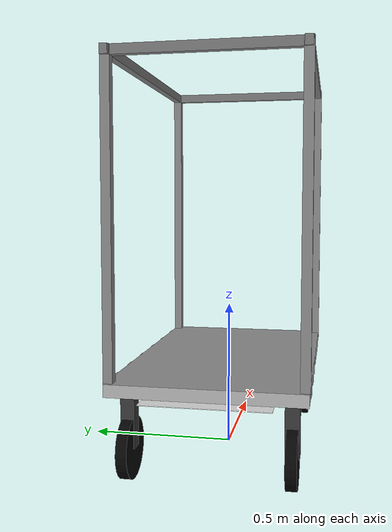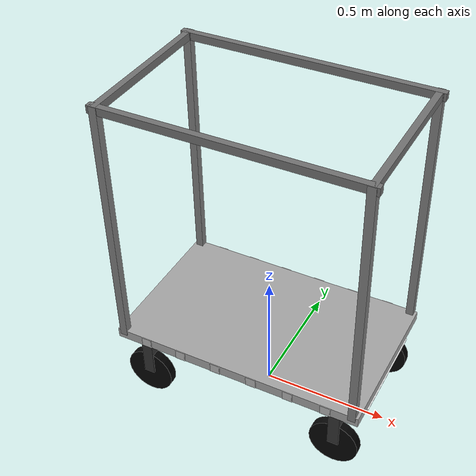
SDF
<?xml version="1.0" ?>
<sdf version="1.6">
  <model name="Trolley">
    <static>false</static>

    <link name="link">

      <visual name="platform">
        <pose>0 0 0.300 0 0 0</pose>
        <geometry>
          <box>
            <size>1.005 0.610 0.040</size>
          </box>
        </geometry>
        <material>
          <ambient>0.65 0.65 0.65 1</ambient>
          <diffuse>0.65 0.65 0.65 1</diffuse>
          <specular>0.1 0.1 0.1 1</specular>
        </material>
      </visual>

      <visual name="platform_front">
        <pose>0.4 0 0.262 0 0 0</pose>
        <geometry>
          <box>
            <size>0.205 0.402 0.002</size>
          </box>
        </geometry>
        <material>
          <ambient>1 1 1 1</ambient>
          <diffuse>1 1 1 1</diffuse>
          <specular>0.1 0.1 0.1 1</specular>
        </material>
      </visual>

      <visual name="platform_rear">
        <pose>-0.4 0 0.262 0 0 0</pose>
        <geometry>
          <box>
            <size>0.205 0.402 0.002</size>
          </box>
        </geometry>
        <material>
          <ambient>1 1 1 1</ambient>
          <diffuse>1 1 1 1</diffuse>
          <specular>0.1 0.1 0.1 1</specular>
        </material>
      </visual>

      <collision name="platform_collision">
        <pose>0 0 0.300 0 0 0</pose>
        <geometry>
          <box>
            <size>1.005 0.610 0.040</size>
          </box>
        </geometry>
        <surface>
          <friction>
            <ode>
              <mu>1.0</mu>
              <mu2>1.0</mu2>
            </ode>
          </friction>
        </surface>
      </collision>

      <collision name="platform_front_collision">
        <pose>0.605 0 0.262 0 0 0</pose>
        <geometry>
          <box>
            <size>0.205 0.402 0.040</size>
          </box>
        </geometry>
        <surface>
          <friction>
            <ode>
              <mu>1.0</mu>
              <mu2>1.0</mu2>
            </ode>
          </friction>
        </surface>
      </collision>

      <collision name="platform_rear_collision">
        <pose>-0.605 0 0.262 0 0 0</pose>
        <geometry>
          <box>
            <size>0.205 0.402 0.040</size>
          </box>
        </geometry>
        <surface>
          <friction>
            <ode>
              <mu>1.0</mu>
              <mu2>1.0</mu2>
            </ode>
          </friction>
        </surface>
      </collision>

      <visual name="top_rail_front">
        <pose>0.4775 0 1.300 0 0 0</pose>
        <geometry>
          <box>
            <size>0.025 0.610 0.030</size>
          </box>
        </geometry>
        <material>
          <ambient>0.45 0.45 0.45 1</ambient>
          <diffuse>0.45 0.45 0.45 1</diffuse>
        </material>
      </visual>

      <visual name="top_rail_rear">
        <pose>-0.4775 0 1.300 0 0 0</pose>
        <geometry>
          <box>
            <size>0.025 0.610 0.030</size>
          </box>
        </geometry>
        <material>
          <ambient>0.45 0.45 0.45 1</ambient>
          <diffuse>0.45 0.45 0.45 1</diffuse>
        </material>
      </visual>

      <visual name="top_rail_left">
        <pose>0 0.2925 1.300 0 0 0</pose>
        <geometry>
          <box>
            <size>1.005 0.025 0.030</size>
          </box>
        </geometry>
        <material>
          <ambient>0.45 0.45 0.45 1</ambient>
          <diffuse>0.45 0.45 0.45 1</diffuse>
        </material>
      </visual>

      <visual name="top_rail_right">
        <pose>0 -0.2925 1.300 0 0 0</pose>
        <geometry>
          <box>
            <size>1.005 0.025 0.030</size>
          </box>
        </geometry>
        <material>
          <ambient>0.45 0.45 0.45 1</ambient>
          <diffuse>0.45 0.45 0.45 1</diffuse>
        </material>
      </visual>

      <visual name="post_front_left">
        <pose>0.4775 0.2925 0.8075 0 0 0</pose>
        <geometry>
          <box>
            <size>0.030 0.030 1.015</size>
          </box>
        </geometry>
        <material>
          <ambient>0.50 0.50 0.50 1</ambient>
          <diffuse>0.50 0.50 0.50 1</diffuse>
        </material>
      </visual>

      <visual name="post_front_right">
        <pose>0.4775 -0.2925 0.8075 0 0 0</pose>
        <geometry>
          <box>
            <size>0.030 0.030 1.015</size>
          </box>
        </geometry>
        <material>
          <ambient>0.50 0.50 0.50 1</ambient>
          <diffuse>0.50 0.50 0.50 1</diffuse>
        </material>
      </visual>

      <visual name="post_rear_left">
        <pose>-0.4775 0.2925 0.8075 0 0 0</pose>
        <geometry>
          <box>
            <size>0.030 0.030 1.015</size>
          </box>
        </geometry>
        <material>
          <ambient>0.50 0.50 0.50 1</ambient>
          <diffuse>0.50 0.50 0.50 1</diffuse>
        </material>
      </visual>

      <visual name="post_rear_right">
        <pose>-0.4775 -0.2925 0.8075 0 0 0</pose>
        <geometry>
          <box>
            <size>0.030 0.030 1.015</size>
          </box>
        </geometry>
        <material>
          <ambient>0.50 0.50 0.50 1</ambient>
          <diffuse>0.50 0.50 0.50 1</diffuse>
        </material>
      </visual>

      <visual name="pin_socket_front">
        <pose>0.090175 0 0.285 0 0 0</pose>
        <geometry>
          <cylinder>
            <radius>0.018</radius>
            <length>0.020</length>
          </cylinder>
        </geometry>
        <material>
          <ambient>0.1 0.1 0.1 1</ambient>
          <diffuse>0.1 0.1 0.1 1</diffuse>
        </material>
      </visual>

      <collision name="pin_socket_front_collision">
        <pose>0.090175 0 0.285 0 0 0</pose>
        <geometry>
          <cylinder>
            <radius>0.018</radius>
            <length>0.020</length>
          </cylinder>
        </geometry>
      </collision>

      <visual name="pin_socket_rear">
        <pose>-0.090175 0 0.285 0 0 0</pose>
        <geometry>
          <cylinder>
            <radius>0.018</radius>
            <length>0.020</length>
          </cylinder>
        </geometry>
        <material>
          <ambient>0.1 0.1 0.1 1</ambient>
          <diffuse>0.1 0.1 0.1 1</diffuse>
        </material>
      </visual>

      <collision name="pin_socket_rear_collision">
        <pose>-0.090175 0 0.285 0 0 0</pose>
        <geometry>
          <cylinder>
            <radius>0.018</radius>
            <length>0.020</length>
          </cylinder>
        </geometry>
      </collision>

      <visual name="aruco_backing_0">
        <pose>0.3525 0.1425 0.2605 0 0 0</pose>
        <geometry>
          <box>
            <size>0.090 0.090 0.001</size>
          </box>
        </geometry>
        <material>
          <ambient>1 1 1 1</ambient>
          <diffuse>1 1 1 1</diffuse>
          <specular>0 0 0 1</specular>
        </material>
      </visual>

      <visual name="aruco_0">
        <pose>0.3525 0.1425 0.2595 0 0 0</pose>
        <geometry>
          <box>
            <size>0.080 0.080 0.001</size>
          </box>
        </geometry>
        <material>
          <script>
            <uri>model://Trolley/materials/scripts</uri>
            <uri>model://Trolley/materials/textures</uri>
            <name>Trolley/Aruco0</name>
          </script>
        </material>
      </visual>

      <visual name="aruco_backing_1">
        <pose>0.4475 0.1425 0.2605 0 0 0</pose>
        <geometry>
          <box>
            <size>0.090 0.090 0.001</size>
          </box>
        </geometry>
        <material>
          <ambient>1 1 1 1</ambient>
          <diffuse>1 1 1 1</diffuse>
          <specular>0 0 0 1</specular>
        </material>
      </visual>

      <visual name="aruco_1">
        <pose>0.4475 0.1425 0.2595 0 0 0</pose>
        <geometry>
          <box>
            <size>0.080 0.080 0.001</size>
          </box>
        </geometry>
        <material>
          <script>
            <uri>model://Trolley/materials/scripts</uri>
            <uri>model://Trolley/materials/textures</uri>
            <name>Trolley/Aruco1</name>
          </script>
        </material>
      </visual>

      <visual name="aruco_backing_2">
        <pose>0.3525 0.0475 0.2605 0 0 0</pose>
        <geometry>
          <box>
            <size>0.090 0.090 0.001</size>
          </box>
        </geometry>
        <material>
          <ambient>1 1 1 1</ambient>
          <diffuse>1 1 1 1</diffuse>
          <specular>0 0 0 1</specular>
        </material>
      </visual>

      <visual name="aruco_2">
        <pose>0.3525 0.0475 0.2595 0 0 0</pose>
        <geometry>
          <box>
            <size>0.080 0.080 0.001</size>
          </box>
        </geometry>
        <material>
          <script>
            <uri>model://Trolley/materials/scripts</uri>
            <uri>model://Trolley/materials/textures</uri>
            <name>Trolley/Aruco2</name>
          </script>
        </material>
      </visual>

      <visual name="aruco_backing_3">
        <pose>0.4475 0.0475 0.2605 0 0 0</pose>
        <geometry>
          <box>
            <size>0.090 0.090 0.001</size>
          </box>
        </geometry>
        <material>
          <ambient>1 1 1 1</ambient>
          <diffuse>1 1 1 1</diffuse>
          <specular>0 0 0 1</specular>
        </material>
      </visual>

      <visual name="aruco_3">
        <pose>0.4475 0.0475 0.2595 0 0 0</pose>
        <geometry>
          <box>
            <size>0.080 0.080 0.001</size>
          </box>
        </geometry>
        <material>
          <script>
            <uri>model://Trolley/materials/scripts</uri>
            <uri>model://Trolley/materials/textures</uri>
            <name>Trolley/Aruco3</name>
          </script>
        </material>
      </visual>

      <visual name="aruco_backing_4">
        <pose>0.3525 -0.0475 0.2605 0 0 0</pose>
        <geometry>
          <box>
            <size>0.090 0.090 0.001</size>
          </box>
        </geometry>
        <material>
          <ambient>1 1 1 1</ambient>
          <diffuse>1 1 1 1</diffuse>
          <specular>0 0 0 1</specular>
        </material>
      </visual>

      <visual name="aruco_4">
        <pose>0.3525 -0.0475 0.2595 0 0 0</pose>
        <geometry>
          <box>
            <size>0.080 0.080 0.001</size>
          </box>
        </geometry>
        <material>
          <script>
            <uri>model://Trolley/materials/scripts</uri>
            <uri>model://Trolley/materials/textures</uri>
            <name>Trolley/Aruco4</name>
          </script>
        </material>
      </visual>

      <visual name="aruco_backing_5">
        <pose>0.4475 -0.0475 0.2605 0 0 0</pose>
        <geometry>
          <box>
            <size>0.090 0.090 0.001</size>
          </box>
        </geometry>
        <material>
          <ambient>1 1 1 1</ambient>
          <diffuse>1 1 1 1</diffuse>
          <specular>0 0 0 1</specular>
        </material>
      </visual>

      <visual name="aruco_5">
        <pose>0.4475 -0.0475 0.2595 0 0 0</pose>
        <geometry>
          <box>
            <size>0.080 0.080 0.001</size>
          </box>
        </geometry>
        <material>
          <script>
            <uri>model://Trolley/materials/scripts</uri>
            <uri>model://Trolley/materials/textures</uri>
            <name>Trolley/Aruco5</name>
          </script>
        </material>
      </visual>

      <visual name="aruco_backing_6">
        <pose>0.3525 -0.1425 0.2605 0 0 0</pose>
        <geometry>
          <box>
            <size>0.090 0.090 0.001</size>
          </box>
        </geometry>
        <material>
          <ambient>1 1 1 1</ambient>
          <diffuse>1 1 1 1</diffuse>
          <specular>0 0 0 1</specular>
        </material>
      </visual>

      <visual name="aruco_6">
        <pose>0.3525 -0.1425 0.2595 0 0 0</pose>
        <geometry>
          <box>
            <size>0.080 0.080 0.001</size>
          </box>
        </geometry>
        <material>
          <script>
            <uri>model://Trolley/materials/scripts</uri>
            <uri>model://Trolley/materials/textures</uri>
            <name>Trolley/Aruco6</name>
          </script>
        </material>
      </visual>

      <visual name="aruco_backing_7">
        <pose>0.4475 -0.1425 0.2605 0 0 0</pose>
        <geometry>
          <box>
            <size>0.090 0.090 0.001</size>
          </box>
        </geometry>
        <material>
          <ambient>1 1 1 1</ambient>
          <diffuse>1 1 1 1</diffuse>
          <specular>0 0 0 1</specular>
        </material>
      </visual>

      <visual name="aruco_7">
        <pose>0.4475 -0.1425 0.2595 0 0 0</pose>
        <geometry>
          <box>
            <size>0.080 0.080 0.001</size>
          </box>
        </geometry>
        <material>
          <script>
            <uri>model://Trolley/materials/scripts</uri>
            <uri>model://Trolley/materials/textures</uri>
            <name>Trolley/Aruco7</name>
          </script>
        </material>
      </visual>

      <visual name="aruco_backing_8">
        <pose>-0.4475 0.1425 0.2605 0 0 0</pose>
        <geometry>
          <box>
            <size>0.090 0.090 0.001</size>
          </box>
        </geometry>
        <material>
          <ambient>1 1 1 1</ambient>
          <diffuse>1 1 1 1</diffuse>
          <specular>0 0 0 1</specular>
        </material>
      </visual>

      <visual name="aruco_8">
        <pose>-0.4475 0.1425 0.2595 0 0 0</pose>
        <geometry>
          <box>
            <size>0.080 0.080 0.001</size>
          </box>
        </geometry>
        <material>
          <script>
            <uri>model://Trolley/materials/scripts</uri>
            <uri>model://Trolley/materials/textures</uri>
            <name>Trolley/Aruco8</name>
          </script>
        </material>
      </visual>

      <visual name="aruco_backing_9">
        <pose>-0.3525 0.1425 0.2605 0 0 0</pose>
        <geometry>
          <box>
            <size>0.090 0.090 0.001</size>
          </box>
        </geometry>
        <material>
          <ambient>1 1 1 1</ambient>
          <diffuse>1 1 1 1</diffuse>
          <specular>0 0 0 1</specular>
        </material>
      </visual>

      <visual name="aruco_9">
        <pose>-0.3525 0.1425 0.2595 0 0 0</pose>
        <geometry>
          <box>
            <size>0.080 0.080 0.001</size>
          </box>
        </geometry>
        <material>
          <script>
            <uri>model://Trolley/materials/scripts</uri>
            <uri>model://Trolley/materials/textures</uri>
            <name>Trolley/Aruco9</name>
          </script>
        </material>
      </visual>

      <visual name="aruco_backing_10">
        <pose>-0.4475 0.0475 0.2605 0 0 0</pose>
        <geometry>
          <box>
            <size>0.090 0.090 0.001</size>
          </box>
        </geometry>
        <material>
          <ambient>1 1 1 1</ambient>
          <diffuse>1 1 1 1</diffuse>
          <specular>0 0 0 1</specular>
        </material>
      </visual>

      <visual name="aruco_10">
        <pose>-0.4475 0.0475 0.2595 0 0 0</pose>
        <geometry>
          <box>
            <size>0.080 0.080 0.001</size>
          </box>
        </geometry>
        <material>
          <script>
            <uri>model://Trolley/materials/scripts</uri>
            <uri>model://Trolley/materials/textures</uri>
            <name>Trolley/Aruco10</name>
          </script>
        </material>
      </visual>

      <visual name="aruco_backing_11">
        <pose>-0.3525 0.0475 0.2605 0 0 0</pose>
        <geometry>
          <box>
            <size>0.090 0.090 0.001</size>
          </box>
        </geometry>
        <material>
          <ambient>1 1 1 1</ambient>
          <diffuse>1 1 1 1</diffuse>
          <specular>0 0 0 1</specular>
        </material>
      </visual>

      <visual name="aruco_11">
        <pose>-0.3525 0.0475 0.2595 0 0 0</pose>
        <geometry>
          <box>
            <size>0.080 0.080 0.001</size>
          </box>
        </geometry>
        <material>
          <script>
            <uri>model://Trolley/materials/scripts</uri>
            <uri>model://Trolley/materials/textures</uri>
            <name>Trolley/Aruco11</name>
          </script>
        </material>
      </visual>

      <visual name="aruco_backing_12">
        <pose>-0.4475 -0.0475 0.2605 0 0 0</pose>
        <geometry>
          <box>
            <size>0.090 0.090 0.001</size>
          </box>
        </geometry>
        <material>
          <ambient>1 1 1 1</ambient>
          <diffuse>1 1 1 1</diffuse>
          <specular>0 0 0 1</specular>
        </material>
      </visual>

      <visual name="aruco_12">
        <pose>-0.4475 -0.0475 0.2595 0 0 0</pose>
        <geometry>
          <box>
            <size>0.080 0.080 0.001</size>
          </box>
        </geometry>
        <material>
          <script>
            <uri>model://Trolley/materials/scripts</uri>
            <uri>model://Trolley/materials/textures</uri>
            <name>Trolley/Aruco12</name>
          </script>
        </material>
      </visual>

      <visual name="aruco_backing_13">
        <pose>-0.3525 -0.0475 0.2605 0 0 0</pose>
        <geometry>
          <box>
            <size>0.090 0.090 0.001</size>
          </box>
        </geometry>
        <material>
          <ambient>1 1 1 1</ambient>
          <diffuse>1 1 1 1</diffuse>
          <specular>0 0 0 1</specular>
        </material>
      </visual>

      <visual name="aruco_13">
        <pose>-0.3525 -0.0475 0.2595 0 0 0</pose>
        <geometry>
          <box>
            <size>0.080 0.080 0.001</size>
          </box>
        </geometry>
        <material>
          <script>
            <uri>model://Trolley/materials/scripts</uri>
            <uri>model://Trolley/materials/textures</uri>
            <name>Trolley/Aruco13</name>
          </script>
        </material>
      </visual>

      <visual name="aruco_backing_14">
        <pose>-0.4475 -0.1425 0.2605 0 0 0</pose>
        <geometry>
          <box>
            <size>0.090 0.090 0.001</size>
          </box>
        </geometry>
        <material>
          <ambient>1 1 1 1</ambient>
          <diffuse>1 1 1 1</diffuse>
          <specular>0 0 0 1</specular>
        </material>
      </visual>

      <visual name="aruco_14">
        <pose>-0.4475 -0.1425 0.2595 0 0 0</pose>
        <geometry>
          <box>
            <size>0.080 0.080 0.001</size>
          </box>
        </geometry>
        <material>
          <script>
            <uri>model://Trolley/materials/scripts</uri>
            <uri>model://Trolley/materials/textures</uri>
            <name>Trolley/Aruco14</name>
          </script>
        </material>
      </visual>

      <visual name="aruco_backing_15">
        <pose>-0.3525 -0.1425 0.2605 0 0 0</pose>
        <geometry>
          <box>
            <size>0.090 0.090 0.001</size>
          </box>
        </geometry>
        <material>
          <ambient>1 1 1 1</ambient>
          <diffuse>1 1 1 1</diffuse>
          <specular>0 0 0 1</specular>
        </material>
      </visual>

      <visual name="aruco_15">
        <pose>-0.3525 -0.1425 0.2595 0 0 0</pose>
        <geometry>
          <box>
            <size>0.080 0.080 0.001</size>
          </box>
        </geometry>
        <material>
          <script>
            <uri>model://Trolley/materials/scripts</uri>
            <uri>model://Trolley/materials/textures</uri>
            <name>Trolley/Aruco15</name>
          </script>
        </material>
      </visual>

      <visual name="aruco_backing_16">
        <pose>-0.3750 0.3055 0.3000 0 0 0</pose>
        <geometry>
          <box>
            <size>0.043 0.001 0.043</size>
          </box>
        </geometry>
        <material>
          <ambient>1 1 1 1</ambient>
          <diffuse>1 1 1 1</diffuse>
          <specular>0 0 0 1</specular>
        </material>
      </visual>

      <visual name="aruco_16">
        <pose>-0.3750 0.3065 0.3000 0 0 0</pose>
        <geometry>
          <box>
            <size>0.038 0.001 0.038</size>
          </box>
        </geometry>
        <material>
          <script>
            <uri>model://Trolley/materials/scripts</uri>
            <uri>model://Trolley/materials/textures</uri>
            <name>Trolley/Aruco16</name>
          </script>
        </material>
      </visual>

      <visual name="aruco_backing_17">
        <pose>-0.2250 0.3055 0.3000 0 0 0</pose>
        <geometry>
          <box>
            <size>0.043 0.001 0.043</size>
          </box>
        </geometry>
        <material>
          <ambient>1 1 1 1</ambient>
          <diffuse>1 1 1 1</diffuse>
          <specular>0 0 0 1</specular>
        </material>
      </visual>

      <visual name="aruco_17">
        <pose>-0.2250 0.3065 0.3000 0 0 0</pose>
        <geometry>
          <box>
            <size>0.038 0.001 0.038</size>
          </box>
        </geometry>
        <material>
          <script>
            <uri>model://Trolley/materials/scripts</uri>
            <uri>model://Trolley/materials/textures</uri>
            <name>Trolley/Aruco17</name>
          </script>
        </material>
      </visual>

      <visual name="aruco_backing_18">
        <pose>-0.0750 0.3055 0.3000 0 0 0</pose>
        <geometry>
          <box>
            <size>0.043 0.001 0.043</size>
          </box>
        </geometry>
        <material>
          <ambient>1 1 1 1</ambient>
          <diffuse>1 1 1 1</diffuse>
          <specular>0 0 0 1</specular>
        </material>
      </visual>

      <visual name="aruco_18">
        <pose>-0.0750 0.3065 0.3000 0 0 0</pose>
        <geometry>
          <box>
            <size>0.038 0.001 0.038</size>
          </box>
        </geometry>
        <material>
          <script>
            <uri>model://Trolley/materials/scripts</uri>
            <uri>model://Trolley/materials/textures</uri>
            <name>Trolley/Aruco18</name>
          </script>
        </material>
      </visual>

      <visual name="aruco_backing_19">
        <pose>0.0750 0.3055 0.3000 0 0 0</pose>
        <geometry>
          <box>
            <size>0.043 0.001 0.043</size>
          </box>
        </geometry>
        <material>
          <ambient>1 1 1 1</ambient>
          <diffuse>1 1 1 1</diffuse>
          <specular>0 0 0 1</specular>
        </material>
      </visual>

      <visual name="aruco_19">
        <pose>0.0750 0.3065 0.3000 0 0 0</pose>
        <geometry>
          <box>
            <size>0.038 0.001 0.038</size>
          </box>
        </geometry>
        <material>
          <script>
            <uri>model://Trolley/materials/scripts</uri>
            <uri>model://Trolley/materials/textures</uri>
            <name>Trolley/Aruco19</name>
          </script>
        </material>
      </visual>

      <visual name="aruco_backing_20">
        <pose>0.2250 0.3055 0.3000 0 0 0</pose>
        <geometry>
          <box>
            <size>0.043 0.001 0.043</size>
          </box>
        </geometry>
        <material>
          <ambient>1 1 1 1</ambient>
          <diffuse>1 1 1 1</diffuse>
          <specular>0 0 0 1</specular>
        </material>
      </visual>

      <visual name="aruco_20">
        <pose>0.2250 0.3065 0.3000 0 0 0</pose>
        <geometry>
          <box>
            <size>0.038 0.001 0.038</size>
          </box>
        </geometry>
        <material>
          <script>
            <uri>model://Trolley/materials/scripts</uri>
            <uri>model://Trolley/materials/textures</uri>
            <name>Trolley/Aruco20</name>
          </script>
        </material>
      </visual>

      <visual name="aruco_backing_21">
        <pose>0.3750 0.3055 0.3000 0 0 0</pose>
        <geometry>
          <box>
            <size>0.043 0.001 0.043</size>
          </box>
        </geometry>
        <material>
          <ambient>1 1 1 1</ambient>
          <diffuse>1 1 1 1</diffuse>
          <specular>0 0 0 1</specular>
        </material>
      </visual>

      <visual name="aruco_21">
        <pose>0.3750 0.3065 0.3000 0 0 0</pose>
        <geometry>
          <box>
            <size>0.038 0.001 0.038</size>
          </box>
        </geometry>
        <material>
          <script>
            <uri>model://Trolley/materials/scripts</uri>
            <uri>model://Trolley/materials/textures</uri>
            <name>Trolley/Aruco21</name>
          </script>
        </material>
      </visual>

      <visual name="aruco_backing_22">
        <pose>-0.3750 -0.3055 0.3000 0 0 0</pose>
        <geometry>
          <box>
            <size>0.043 0.001 0.043</size>
          </box>
        </geometry>
        <material>
          <ambient>1 1 1 1</ambient>
          <diffuse>1 1 1 1</diffuse>
          <specular>0 0 0 1</specular>
        </material>
      </visual>

      <visual name="aruco_22">
        <pose>-0.3750 -0.3065 0.3000 0 0 0</pose>
        <geometry>
          <box>
            <size>0.038 0.001 0.038</size>
          </box>
        </geometry>
        <material>
          <script>
            <uri>model://Trolley/materials/scripts</uri>
            <uri>model://Trolley/materials/textures</uri>
            <name>Trolley/Aruco22</name>
          </script>
        </material>
      </visual>

      <visual name="aruco_backing_23">
        <pose>-0.2250 -0.3055 0.3000 0 0 0</pose>
        <geometry>
          <box>
            <size>0.043 0.001 0.043</size>
          </box>
        </geometry>
        <material>
          <ambient>1 1 1 1</ambient>
          <diffuse>1 1 1 1</diffuse>
          <specular>0 0 0 1</specular>
        </material>
      </visual>

      <visual name="aruco_23">
        <pose>-0.2250 -0.3065 0.3000 0 0 0</pose>
        <geometry>
          <box>
            <size>0.038 0.001 0.038</size>
          </box>
        </geometry>
        <material>
          <script>
            <uri>model://Trolley/materials/scripts</uri>
            <uri>model://Trolley/materials/textures</uri>
            <name>Trolley/Aruco23</name>
          </script>
        </material>
      </visual>

      <visual name="aruco_backing_24">
        <pose>-0.0750 -0.3055 0.3000 0 0 0</pose>
        <geometry>
          <box>
            <size>0.043 0.001 0.043</size>
          </box>
        </geometry>
        <material>
          <ambient>1 1 1 1</ambient>
          <diffuse>1 1 1 1</diffuse>
          <specular>0 0 0 1</specular>
        </material>
      </visual>

      <visual name="aruco_24">
        <pose>-0.0750 -0.3065 0.3000 0 0 0</pose>
        <geometry>
          <box>
            <size>0.038 0.001 0.038</size>
          </box>
        </geometry>
        <material>
          <script>
            <uri>model://Trolley/materials/scripts</uri>
            <uri>model://Trolley/materials/textures</uri>
            <name>Trolley/Aruco24</name>
          </script>
        </material>
      </visual>

      <visual name="aruco_backing_25">
        <pose>0.0750 -0.3055 0.3000 0 0 0</pose>
        <geometry>
          <box>
            <size>0.043 0.001 0.043</size>
          </box>
        </geometry>
        <material>
          <ambient>1 1 1 1</ambient>
          <diffuse>1 1 1 1</diffuse>
          <specular>0 0 0 1</specular>
        </material>
      </visual>

      <visual name="aruco_25">
        <pose>0.0750 -0.3065 0.3000 0 0 0</pose>
        <geometry>
          <box>
            <size>0.038 0.001 0.038</size>
          </box>
        </geometry>
        <material>
          <script>
            <uri>model://Trolley/materials/scripts</uri>
            <uri>model://Trolley/materials/textures</uri>
            <name>Trolley/Aruco25</name>
          </script>
        </material>
      </visual>

      <visual name="aruco_backing_26">
        <pose>0.2250 -0.3055 0.3000 0 0 0</pose>
        <geometry>
          <box>
            <size>0.043 0.001 0.043</size>
          </box>
        </geometry>
        <material>
          <ambient>1 1 1 1</ambient>
          <diffuse>1 1 1 1</diffuse>
          <specular>0 0 0 1</specular>
        </material>
      </visual>

      <visual name="aruco_26">
        <pose>0.2250 -0.3065 0.3000 0 0 0</pose>
        <geometry>
          <box>
            <size>0.038 0.001 0.038</size>
          </box>
        </geometry>
        <material>
          <script>
            <uri>model://Trolley/materials/scripts</uri>
            <uri>model://Trolley/materials/textures</uri>
            <name>Trolley/Aruco26</name>
          </script>
        </material>
      </visual>

      <visual name="aruco_backing_27">
        <pose>0.3750 -0.3055 0.3000 0 0 0</pose>
        <geometry>
          <box>
            <size>0.043 0.001 0.043</size>
          </box>
        </geometry>
        <material>
          <ambient>1 1 1 1</ambient>
          <diffuse>1 1 1 1</diffuse>
          <specular>0 0 0 1</specular>
        </material>
      </visual>

      <visual name="aruco_27">
        <pose>0.3750 -0.3065 0.3000 0 0 0</pose>
        <geometry>
          <box>
            <size>0.038 0.001 0.038</size>
          </box>
        </geometry>
        <material>
          <script>
            <uri>model://Trolley/materials/scripts</uri>
            <uri>model://Trolley/materials/textures</uri>
            <name>Trolley/Aruco27</name>
          </script>
        </material>
      </visual>

      <!-- Inertial (required if not static) -->
      <inertial>
        <mass>20.0</mass>
        <inertia>
          <ixx>1.0</ixx>
          <iyy>1.0</iyy>
          <izz>1.0</izz>
        </inertia>
      </inertial>

    </link>

    <link name="caster_fl_fork">
      <pose>0.400 0.253 0.190 0 0 0</pose>
      <visual name="visual">
        <geometry>
          <box>
            <size>0.045 0.045 0.180</size>
          </box>
        </geometry>
        <material>
          <ambient>0.2 0.2 0.2 1</ambient>
          <diffuse>0.2 0.2 0.2 1</diffuse>
        </material>
      </visual>
      <collision name="collision">
        <geometry>
          <box>
            <size>0.045 0.045 0.180</size>
          </box>
        </geometry>
      </collision>
      <inertial>
        <mass>0.3</mass>
        <inertia>
          <ixx>0.001</ixx>
          <iyy>0.001</iyy>
          <izz>0.001</izz>
        </inertia>
      </inertial>
    </link>

    <link name="caster_fl_wheel">
      <pose>0.400 0.253 0.097655 0 0 0</pose>
      <visual name="visual">
        <pose>0 0 0 1.5708 0 0</pose>
        <geometry>
          <cylinder>
            <radius>0.097655</radius>
            <length>0.035</length>
          </cylinder>
        </geometry>
        <material>
          <ambient>0.02 0.02 0.02 1</ambient>
          <diffuse>0.02 0.02 0.02 1</diffuse>
        </material>
      </visual>
      <collision name="collision">
        <pose>0 0 0 1.5708 0 0</pose>
        <geometry>
          <cylinder>
            <radius>0.097655</radius>
            <length>0.035</length>
          </cylinder>
        </geometry>
        <surface>
          <friction>
            <ode>
              <mu>0.8</mu>
              <mu2>0.05</mu2>
            </ode>
          </friction>
        </surface>
      </collision>
      <inertial>
        <mass>0.8</mass>
        <inertia>
          <ixx>0.004</ixx>
          <iyy>0.004</iyy>
          <izz>0.004</izz>
        </inertia>
      </inertial>
    </link>

    <joint name="caster_fl_swivel_joint" type="revolute">
      <parent>link</parent>
      <child>caster_fl_fork</child>
      <axis>
        <xyz>0 0 1</xyz>
        <limit>
          <lower>-1000000</lower>
          <upper>1000000</upper>
        </limit>
        <dynamics>
          <damping>0.001</damping>
          <friction>0.0</friction>
        </dynamics>
      </axis>
    </joint>

    <joint name="caster_fl_wheel_joint" type="revolute">
      <parent>caster_fl_fork</parent>
      <child>caster_fl_wheel</child>
      <axis>
        <xyz>0 1 0</xyz>
        <limit>
          <lower>-1000000</lower>
          <upper>1000000</upper>
        </limit>
        <dynamics>
          <damping>0.001</damping>
          <friction>0.0</friction>
        </dynamics>
      </axis>
    </joint>

    <link name="caster_fr_fork">
      <pose>0.400 -0.253 0.190 0 0 0</pose>
      <visual name="visual">
        <geometry>
          <box>
            <size>0.045 0.045 0.180</size>
          </box>
        </geometry>
        <material>
          <ambient>0.2 0.2 0.2 1</ambient>
          <diffuse>0.2 0.2 0.2 1</diffuse>
        </material>
      </visual>
      <collision name="collision">
        <geometry>
          <box>
            <size>0.045 0.045 0.180</size>
          </box>
        </geometry>
      </collision>
      <inertial>
        <mass>0.3</mass>
        <inertia>
          <ixx>0.001</ixx>
          <iyy>0.001</iyy>
          <izz>0.001</izz>
        </inertia>
      </inertial>
    </link>

    <link name="caster_fr_wheel">
      <pose>0.400 -0.253 0.097655 0 0 0</pose>
      <visual name="visual">
        <pose>0 0 0 1.5708 0 0</pose>
        <geometry>
          <cylinder>
            <radius>0.097655</radius>
            <length>0.035</length>
          </cylinder>
        </geometry>
        <material>
          <ambient>0.02 0.02 0.02 1</ambient>
          <diffuse>0.02 0.02 0.02 1</diffuse>
        </material>
      </visual>
      <collision name="collision">
        <pose>0 0 0 1.5708 0 0</pose>
        <geometry>
          <cylinder>
            <radius>0.097655</radius>
            <length>0.035</length>
          </cylinder>
        </geometry>
        <surface>
          <friction>
            <ode>
              <mu>0.8</mu>
              <mu2>0.05</mu2>
            </ode>
          </friction>
        </surface>
      </collision>
      <inertial>
        <mass>0.8</mass>
        <inertia>
          <ixx>0.004</ixx>
          <iyy>0.004</iyy>
          <izz>0.004</izz>
        </inertia>
      </inertial>
    </link>

    <joint name="caster_fr_swivel_joint" type="revolute">
      <parent>link</parent>
      <child>caster_fr_fork</child>
      <axis>
        <xyz>0 0 1</xyz>
        <limit><lower>-1000000</lower><upper>1000000</upper></limit>
        <dynamics><damping>0.001</damping><friction>0.0</friction></dynamics>
      </axis>
    </joint>

    <joint name="caster_fr_wheel_joint" type="revolute">
      <parent>caster_fr_fork</parent>
      <child>caster_fr_wheel</child>
      <axis>
        <xyz>0 1 0</xyz>
        <limit><lower>-1000000</lower><upper>1000000</upper></limit>
        <dynamics><damping>0.001</damping><friction>0.0</friction></dynamics>
      </axis>
    </joint>

    <link name="caster_rl_fork">
      <pose>-0.400 0.253 0.190 0 0 0</pose>
      <visual name="visual">
        <geometry><box><size>0.045 0.045 0.180</size></box></geometry>
        <material><ambient>0.2 0.2 0.2 1</ambient><diffuse>0.2 0.2 0.2 1</diffuse></material>
      </visual>
      <collision name="collision">
        <geometry><box><size>0.045 0.045 0.180</size></box></geometry>
      </collision>
      <inertial>
        <mass>0.3</mass>
        <inertia><ixx>0.001</ixx><iyy>0.001</iyy><izz>0.001</izz></inertia>
      </inertial>
    </link>

    <link name="caster_rl_wheel">
      <pose>-0.400 0.253 0.097655 0 0 0</pose>
      <visual name="visual">
        <pose>0 0 0 1.5708 0 0</pose>
        <geometry><cylinder><radius>0.097655</radius><length>0.035</length></cylinder></geometry>
        <material><ambient>0.02 0.02 0.02 1</ambient><diffuse>0.02 0.02 0.02 1</diffuse></material>
      </visual>
      <collision name="collision">
        <pose>0 0 0 1.5708 0 0</pose>
        <geometry><cylinder><radius>0.097655</radius><length>0.035</length></cylinder></geometry>
        <surface><friction><ode><mu>0.8</mu><mu2>0.05</mu2></ode></friction></surface>
      </collision>
      <inertial>
        <mass>0.8</mass>
        <inertia><ixx>0.004</ixx><iyy>0.004</iyy><izz>0.004</izz></inertia>
      </inertial>
    </link>

    <joint name="caster_rl_swivel_joint" type="revolute">
      <parent>link</parent>
      <child>caster_rl_fork</child>
      <axis>
        <xyz>0 0 1</xyz>
        <limit><lower>-1000000</lower><upper>1000000</upper></limit>
        <dynamics><damping>0.001</damping><friction>0.0</friction></dynamics>
      </axis>
    </joint>

    <joint name="caster_rl_wheel_joint" type="revolute">
      <parent>caster_rl_fork</parent>
      <child>caster_rl_wheel</child>
      <axis>
        <xyz>0 1 0</xyz>
        <limit><lower>-1000000</lower><upper>1000000</upper></limit>
        <dynamics><damping>0.001</damping><friction>0.0</friction></dynamics>
      </axis>
    </joint>

    <link name="caster_rr_fork">
      <pose>-0.400 -0.253 0.190 0 0 0</pose>
      <visual name="visual">
        <geometry><box><size>0.045 0.045 0.180</size></box></geometry>
        <material><ambient>0.2 0.2 0.2 1</ambient><diffuse>0.2 0.2 0.2 1</diffuse></material>
      </visual>
      <collision name="collision">
        <geometry><box><size>0.045 0.045 0.180</size></box></geometry>
      </collision>
      <inertial>
        <mass>0.3</mass>
        <inertia><ixx>0.001</ixx><iyy>0.001</iyy><izz>0.001</izz></inertia>
      </inertial>
    </link>

    <link name="caster_rr_wheel">
      <pose>-0.400 -0.253 0.097655 0 0 0</pose>
      <visual name="visual">
        <pose>0 0 0 1.5708 0 0</pose>
        <geometry><cylinder><radius>0.097655</radius><length>0.035</length></cylinder></geometry>
        <material><ambient>0.02 0.02 0.02 1</ambient><diffuse>0.02 0.02 0.02 1</diffuse></material>
      </visual>
      <collision name="collision">
        <pose>0 0 0 1.5708 0 0</pose>
        <geometry><cylinder><radius>0.097655</radius><length>0.035</length></cylinder></geometry>
        <surface><friction><ode><mu>0.8</mu><mu2>0.05</mu2></ode></friction></surface>
      </collision>
      <inertial>
        <mass>0.8</mass>
        <inertia><ixx>0.004</ixx><iyy>0.004</iyy><izz>0.004</izz></inertia>
      </inertial>
    </link>

    <joint name="caster_rr_swivel_joint" type="revolute">
      <parent>link</parent>
      <child>caster_rr_fork</child>
      <axis>
        <xyz>0 0 1</xyz>
        <limit><lower>-1000000</lower><upper>1000000</upper></limit>
        <dynamics><damping>0.001</damping><friction>0.0</friction></dynamics>
      </axis>
    </joint>

    <joint name="caster_rr_wheel_joint" type="revolute">
      <parent>caster_rr_fork</parent>
      <child>caster_rr_wheel</child>
      <axis>
        <xyz>0 1 0</xyz>
        <limit><lower>-1000000</lower><upper>1000000</upper></limit>
        <dynamics><damping>0.001</damping><friction>0.0</friction></dynamics>
      </axis>
    </joint>
  </model>
</sdf>
